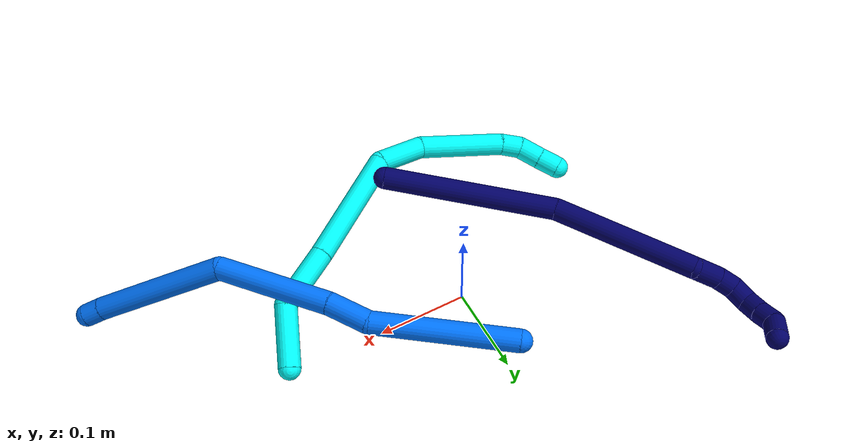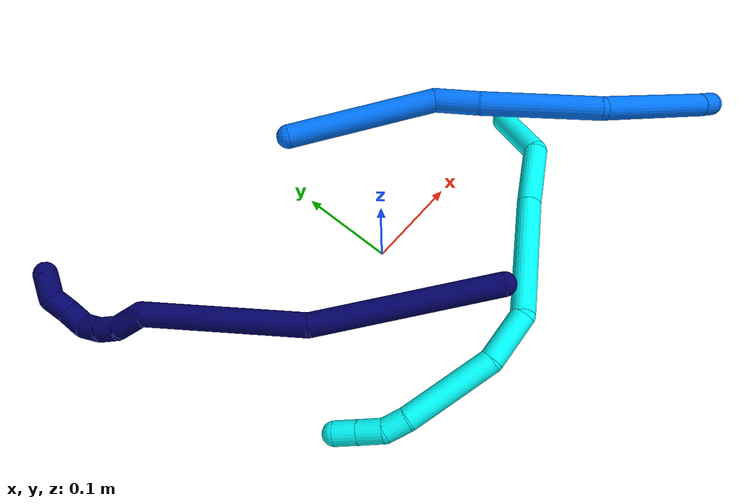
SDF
<sdf version="1.7">
 <world name="default">
  <model name="photoneo_s_sensor">
   <static>1</static>
   <pose>0 0 2 1.57079 1.57079 3.14159</pose>
   <link name="link">
    <inertial><mass>0.1</mass></inertial>
    <sensor name="sensor" type="depth">
     <update_rate>30</update_rate>
     <camera>
      <horizontal_fov>1.22</horizontal_fov>
      <image><width>1920</width><height>1200</height><format>B8G8R8</format></image>
      <clip><near>0.1</near><far>4</far></clip>
      <depth_camera><output>points</output></depth_camera>
     </camera>
     <plugin name="camera_plugin" filename="libgazebo_ros_depth_camera.so">
      <baseline>0.2</baseline>
      <alwaysOn>1</alwaysOn>
      <updateRate>0.0</updateRate>
      <cameraName>camera_ir</cameraName>
      <imageTopicName>/camera/color/image_raw</imageTopicName>
      <cameraInfoTopicName>/camera/color/camera_info</cameraInfoTopicName>
      <depthImageTopicName>/camera/depth/image_raw</depthImageTopicName>
      <depthImageCameraInfoTopicName>/camera/depth/camera_info</depthImageCameraInfoTopicName>
      <pointCloudTopicName>/camera/depth/points</pointCloudTopicName>
      <frameName>fr_optical</frameName>
      <pointCloudCutoff>0.1</pointCloudCutoff>
      <pointCloudCutoffMax>2.0</pointCloudCutoffMax>
      <distortionK1>0</distortionK1>
      <distortionK2>0</distortionK2>
      <distortionK3>0</distortionK3>
      <distortionT1>0</distortionT1>
      <distortionT2>0</distortionT2>
      <CxPrime>0</CxPrime>
      <Cx>0</Cx>
      <Cy>0</Cy>
      <focalLength>0</focalLength>
      <hackBaseline>0</hackBaseline>
     </plugin>
    </sensor>
   </link>
  </model>
  <model name="bin">
   <static>1</static>
   <link name="bottom">
    <collision name="collision-bottom">
     <pose>0 0 -0.01 0 -0 0</pose>
     <geometry><box><size>0.8 0.6 0.02</size></box></geometry>
     <surface>
      <friction><ode><mu>100</mu><mu2>100</mu2></ode></friction>
      <contact><collide_bitmask>65535</collide_bitmask></contact>
     </surface>
    </collision>
   </link>
   <link name="west_wall">
    <collision name="collision-west_wall">
     <pose>-0.41 0 0.1 0 -0 0</pose>
     <geometry><box><size>0.02 0.6 0.2</size></box></geometry>
     <surface>
      <friction><ode><mu>100</mu><mu2>100</mu2></ode></friction>
      <contact><collide_bitmask>65535</collide_bitmask></contact>
     </surface>
    </collision>
   </link>
   <link name="east_wall">
    <collision name="collision-east_wall">
     <pose>0.41 0 0.1 0 -0 0</pose>
     <geometry><box><size>0.02 0.6 0.2</size></box></geometry>
     <surface>
      <friction><ode><mu>100</mu><mu2>100</mu2></ode></friction>
      <contact><collide_bitmask>65535</collide_bitmask></contact>
     </surface>
    </collision>
   </link>
   <link name="south_wall">
    <collision name="collision-south_wall">
     <pose>0 -0.31 0.1 0 -0 0</pose>
     <geometry><box><size>0.8 0.02 0.2</size></box></geometry>
     <surface>
      <friction><ode><mu>100</mu><mu2>100</mu2></ode></friction>
      <contact><collide_bitmask>65535</collide_bitmask></contact>
     </surface>
    </collision>
   </link>
   <link name="north_wall">
    <collision name="collision-north_wall">
     <pose>0 0.31 0.1 0 -0 0</pose>
     <geometry><box><size>0.8 0.02 0.2</size></box></geometry>
     <surface>
      <friction><ode><mu>100</mu><mu2>100</mu2></ode></friction>
      <contact><collide_bitmask>65535</collide_bitmask></contact>
     </surface>
    </collision>
   </link>
  </model>
  <model name="3">
   <static>0</static>
   <link name="3">
    <collision name="collision-cylinder-e_1_1_4">
     <pose>-0.009029 0.030796 0.013346 -1.16187 -0.262787 0.173087</pose>
     <geometry><cylinder><radius>0.0125</radius><length>0.069514</length></cylinder></geometry>
     <surface>
      <friction><ode><mu>1.16</mu><mu2>1.16</mu2><slip1>0</slip1><slip2>0</slip2></ode></friction>
      <contact><ode><kp>1e+06</kp><kd>1</kd><max_vel>0</max_vel><min_depth>0.001</min_depth></ode></contact>
     </surface>
    </collision>
    <visual name="visual-cylinder-e_1_1_4">
     <pose>-0.009029 0.030796 0.013346 -1.16187 -0.262787 0.173087</pose>
     <geometry><cylinder><radius>0.0125</radius><length>0.069514</length></cylinder></geometry>
     <material><ambient>0.003922 1 0.996078 1</ambient></material>
    </visual>
    <collision name="collision-cylinder-e_2_4_5">
     <pose>-0.045353 0.07869 0.041464 -0.858208 -0.879317 0.423951</pose>
     <geometry><cylinder><radius>0.0125</radius><length>0.070867</length></cylinder></geometry>
     <surface>
      <friction><ode><mu>1.16</mu><mu2>1.16</mu2><slip1>0</slip1><slip2>0</slip2></ode></friction>
      <contact><ode><kp>1e+06</kp><kd>1</kd><max_vel>0</max_vel><min_depth>0.001</min_depth></ode></contact>
     </surface>
    </collision>
    <visual name="visual-cylinder-e_2_4_5">
     <pose>-0.045353 0.07869 0.041464 -0.858208 -0.879317 0.423951</pose>
     <geometry><cylinder><radius>0.0125</radius><length>0.070867</length></cylinder></geometry>
     <material><ambient>0.003922 1 0.996078 1</ambient></material>
    </visual>
    <collision name="collision-cylinder-e_3_5_6">
     <pose>-0.122105 0.130077 0.086009 -0.855806 -0.82803 0.39558</pose>
     <geometry><cylinder><radius>0.0125</radius><length>0.134286</length></cylinder></geometry>
     <surface>
      <friction><ode><mu>1.16</mu><mu2>1.16</mu2><slip1>0</slip1><slip2>0</slip2></ode></friction>
      <contact><ode><kp>1e+06</kp><kd>1</kd><max_vel>0</max_vel><min_depth>0.001</min_depth></ode></contact>
     </surface>
    </collision>
    <visual name="visual-cylinder-e_3_5_6">
     <pose>-0.122105 0.130077 0.086009 -0.855806 -0.82803 0.39558</pose>
     <geometry><cylinder><radius>0.0125</radius><length>0.134286</length></cylinder></geometry>
     <material><ambient>0.003922 1 0.996078 1</ambient></material>
    </visual>
    <collision name="collision-cylinder-e_4_6_7">
     <pose>-0.197229 0.164097 0.124496 0.030874 -1.2433 -0.022119</pose>
     <geometry><cylinder><radius>0.0125</radius><length>0.054215</length></cylinder></geometry>
     <surface>
      <friction><ode><mu>1.16</mu><mu2>1.16</mu2><slip1>0</slip1><slip2>0</slip2></ode></friction>
      <contact><ode><kp>1e+06</kp><kd>1</kd><max_vel>0</max_vel><min_depth>0.001</min_depth></ode></contact>
     </surface>
    </collision>
    <visual name="visual-cylinder-e_4_6_7">
     <pose>-0.197229 0.164097 0.124496 0.030874 -1.2433 -0.022119</pose>
     <geometry><cylinder><radius>0.0125</radius><length>0.054215</length></cylinder></geometry>
     <material><ambient>0.003922 1 0.996078 1</ambient></material>
    </visual>
    <collision name="collision-cylinder-e_5_7_8">
     <pose>-0.269309 0.150423 0.137398 1.26815 -1.27698 -0.999218</pose>
     <geometry><cylinder><radius>0.0125</radius><length>0.096981</length></cylinder></geometry>
     <surface>
      <friction><ode><mu>1.16</mu><mu2>1.16</mu2><slip1>0</slip1><slip2>0</slip2></ode></friction>
      <contact><ode><kp>1e+06</kp><kd>1</kd><max_vel>0</max_vel><min_depth>0.001</min_depth></ode></contact>
     </surface>
    </collision>
    <visual name="visual-cylinder-e_5_7_8">
     <pose>-0.269309 0.150423 0.137398 1.26815 -1.27698 -0.999218</pose>
     <geometry><cylinder><radius>0.0125</radius><length>0.096981</length></cylinder></geometry>
     <material><ambient>0.003922 1 0.996078 1</ambient></material>
    </visual>
    <collision name="collision-cylinder-e_6_8_9">
     <pose>-0.32642 0.131555 0.142108 1.4751 -1.09688 -1.01353</pose>
     <geometry><cylinder><radius>0.0125</radius><length>0.02405</length></cylinder></geometry>
     <surface>
      <friction><ode><mu>1.16</mu><mu2>1.16</mu2><slip1>0</slip1><slip2>0</slip2></ode></friction>
      <contact><ode><kp>1e+06</kp><kd>1</kd><max_vel>0</max_vel><min_depth>0.001</min_depth></ode></contact>
     </surface>
    </collision>
    <visual name="visual-cylinder-e_6_8_9">
     <pose>-0.32642 0.131555 0.142108 1.4751 -1.09688 -1.01353</pose>
     <geometry><cylinder><radius>0.0125</radius><length>0.02405</length></cylinder></geometry>
     <material><ambient>0.003922 1 0.996078 1</ambient></material>
    </visual>
    <collision name="collision-cylinder-e_7_9_10">
     <pose>-0.345964 0.116875 0.139719 1.87691 -0.741013 -0.974953</pose>
     <geometry><cylinder><radius>0.0125</radius><length>0.026205</length></cylinder></geometry>
     <surface>
      <friction><ode><mu>1.16</mu><mu2>1.16</mu2><slip1>0</slip1><slip2>0</slip2></ode></friction>
      <contact><ode><kp>1e+06</kp><kd>1</kd><max_vel>0</max_vel><min_depth>0.001</min_depth></ode></contact>
     </surface>
    </collision>
    <visual name="visual-cylinder-e_7_9_10">
     <pose>-0.345964 0.116875 0.139719 1.87691 -0.741013 -0.974953</pose>
     <geometry><cylinder><radius>0.0125</radius><length>0.026205</length></cylinder></geometry>
     <material><ambient>0.003922 1 0.996078 1</ambient></material>
    </visual>
    <collision name="collision-cylinder-e_8_10_2">
     <pose>-0.362999 0.099485 0.133854 1.91741 -0.755846 -1.02934</pose>
     <geometry><cylinder><radius>0.0125</radius><length>0.023882</length></cylinder></geometry>
     <surface>
      <friction><ode><mu>1.16</mu><mu2>1.16</mu2><slip1>0</slip1><slip2>0</slip2></ode></friction>
      <contact><ode><kp>1e+06</kp><kd>1</kd><max_vel>0</max_vel><min_depth>0.001</min_depth></ode></contact>
     </surface>
    </collision>
    <visual name="visual-cylinder-e_8_10_2">
     <pose>-0.362999 0.099485 0.133854 1.91741 -0.755846 -1.02934</pose>
     <geometry><cylinder><radius>0.0125</radius><length>0.023882</length></cylinder></geometry>
     <material><ambient>0.003922 1 0.996078 1</ambient></material>
    </visual>
    <collision name="collision-sphere-2">
     <pose>-0.37119 0.091313 0.130902 0 -0 0</pose>
     <geometry><sphere><radius>0.0125</radius></sphere></geometry>
     <surface>
      <friction><ode><mu>1.16</mu><mu2>1.16</mu2><slip1>0</slip1><slip2>0</slip2></ode></friction>
      <contact><ode><kp>1e+06</kp><kd>1</kd><max_vel>0</max_vel><min_depth>0.001</min_depth></ode></contact>
     </surface>
    </collision>
    <visual name="visual-sphere-2">
     <pose>-0.37119 0.091313 0.130902 0 -0 0</pose>
     <geometry><sphere><radius>0.0125</radius></sphere></geometry>
     <material><ambient>0.003922 1 0.996078 1</ambient></material>
    </visual>
    <collision name="collision-sphere-10">
     <pose>-0.354809 0.107658 0.136806 0 -0 0</pose>
     <geometry><sphere><radius>0.0125</radius></sphere></geometry>
     <surface>
      <friction><ode><mu>1.16</mu><mu2>1.16</mu2><slip1>0</slip1><slip2>0</slip2></ode></friction>
      <contact><ode><kp>1e+06</kp><kd>1</kd><max_vel>0</max_vel><min_depth>0.001</min_depth></ode></contact>
     </surface>
    </collision>
    <visual name="visual-sphere-10">
     <pose>-0.354809 0.107658 0.136806 0 -0 0</pose>
     <geometry><sphere><radius>0.0125</radius></sphere></geometry>
     <material><ambient>0.003922 1 0.996078 1</ambient></material>
    </visual>
    <collision name="collision-sphere-9">
     <pose>-0.33712 0.126093 0.142632 0 -0 0</pose>
     <geometry><sphere><radius>0.0125</radius></sphere></geometry>
     <surface>
      <friction><ode><mu>1.16</mu><mu2>1.16</mu2><slip1>0</slip1><slip2>0</slip2></ode></friction>
      <contact><ode><kp>1e+06</kp><kd>1</kd><max_vel>0</max_vel><min_depth>0.001</min_depth></ode></contact>
     </surface>
    </collision>
    <visual name="visual-sphere-9">
     <pose>-0.33712 0.126093 0.142632 0 -0 0</pose>
     <geometry><sphere><radius>0.0125</radius></sphere></geometry>
     <material><ambient>0.003922 1 0.996078 1</ambient></material>
    </visual>
    <collision name="collision-sphere-4">
     <pose>-0.018058 0.061593 0.026692 0 -0 0</pose>
     <geometry><sphere><radius>0.0125</radius></sphere></geometry>
     <surface>
      <friction><ode><mu>1.16</mu><mu2>1.16</mu2><slip1>0</slip1><slip2>0</slip2></ode></friction>
      <contact><ode><kp>1e+06</kp><kd>1</kd><max_vel>0</max_vel><min_depth>0.001</min_depth></ode></contact>
     </surface>
    </collision>
    <visual name="visual-sphere-4">
     <pose>-0.018058 0.061593 0.026692 0 -0 0</pose>
     <geometry><sphere><radius>0.0125</radius></sphere></geometry>
     <material><ambient>0.003922 1 0.996078 1</ambient></material>
    </visual>
    <collision name="collision-sphere-1">
     <geometry><sphere><radius>0.0125</radius></sphere></geometry>
     <surface>
      <friction><ode><mu>1.16</mu><mu2>1.16</mu2><slip1>0</slip1><slip2>0</slip2></ode></friction>
      <contact><ode><kp>1e+06</kp><kd>1</kd><max_vel>0</max_vel><min_depth>0.001</min_depth></ode></contact>
     </surface>
    </collision>
    <visual name="visual-sphere-1">
     <geometry><sphere><radius>0.0125</radius></sphere></geometry>
     <material><ambient>0.003922 1 0.996078 1</ambient></material>
    </visual>
    <collision name="collision-sphere-8">
     <pose>-0.315721 0.137018 0.141583 0 -0 0</pose>
     <geometry><sphere><radius>0.0125</radius></sphere></geometry>
     <surface>
      <friction><ode><mu>1.16</mu><mu2>1.16</mu2><slip1>0</slip1><slip2>0</slip2></ode></friction>
      <contact><ode><kp>1e+06</kp><kd>1</kd><max_vel>0</max_vel><min_depth>0.001</min_depth></ode></contact>
     </surface>
    </collision>
    <visual name="visual-sphere-8">
     <pose>-0.315721 0.137018 0.141583 0 -0 0</pose>
     <geometry><sphere><radius>0.0125</radius></sphere></geometry>
     <material><ambient>0.003922 1 0.996078 1</ambient></material>
    </visual>
    <collision name="collision-sphere-5">
     <pose>-0.072647 0.095787 0.056237 0 -0 0</pose>
     <geometry><sphere><radius>0.0125</radius></sphere></geometry>
     <surface>
      <friction><ode><mu>1.16</mu><mu2>1.16</mu2><slip1>0</slip1><slip2>0</slip2></ode></friction>
      <contact><ode><kp>1e+06</kp><kd>1</kd><max_vel>0</max_vel><min_depth>0.001</min_depth></ode></contact>
     </surface>
    </collision>
    <visual name="visual-sphere-5">
     <pose>-0.072647 0.095787 0.056237 0 -0 0</pose>
     <geometry><sphere><radius>0.0125</radius></sphere></geometry>
     <material><ambient>0.003922 1 0.996078 1</ambient></material>
    </visual>
    <collision name="collision-sphere-6">
     <pose>-0.171563 0.164367 0.115781 0 -0 0</pose>
     <geometry><sphere><radius>0.0125</radius></sphere></geometry>
     <surface>
      <friction><ode><mu>1.16</mu><mu2>1.16</mu2><slip1>0</slip1><slip2>0</slip2></ode></friction>
      <contact><ode><kp>1e+06</kp><kd>1</kd><max_vel>0</max_vel><min_depth>0.001</min_depth></ode></contact>
     </surface>
    </collision>
    <visual name="visual-sphere-6">
     <pose>-0.171563 0.164367 0.115781 0 -0 0</pose>
     <geometry><sphere><radius>0.0125</radius></sphere></geometry>
     <material><ambient>0.003922 1 0.996078 1</ambient></material>
    </visual>
    <collision name="collision-sphere-7">
     <pose>-0.222896 0.163828 0.133212 0 -0 0</pose>
     <geometry><sphere><radius>0.0125</radius></sphere></geometry>
     <surface>
      <friction><ode><mu>1.16</mu><mu2>1.16</mu2><slip1>0</slip1><slip2>0</slip2></ode></friction>
      <contact><ode><kp>1e+06</kp><kd>1</kd><max_vel>0</max_vel><min_depth>0.001</min_depth></ode></contact>
     </surface>
    </collision>
    <visual name="visual-sphere-7">
     <pose>-0.222896 0.163828 0.133212 0 -0 0</pose>
     <geometry><sphere><radius>0.0125</radius></sphere></geometry>
     <material><ambient>0.003922 1 0.996078 1</ambient></material>
    </visual>
    <inertial>
     <pose>-0.165269 0.114544 0.091532 0 -0 0</pose>
     <mass>0.5</mass>
     <inertia>
      <ixx>0.000212</ixx>
      <ixy>0</ixy>
      <ixz>0</ixz>
      <iyy>0.000354</iyy>
      <iyz>0</iyz>
      <izz>0.000169</izz>
     </inertia>
    </inertial>
   </link>
   <pose>0.210043 -0.000359 0.012509 2.33806 0.085631 -0.161557</pose>
  </model>
  <model name="7">
   <static>0</static>
   <link name="7">
    <collision name="collision-cylinder-e_1_1_4">
     <pose>-0.087224 0.029669 -0.029734 -2.35728 -1.122 1.97735</pose>
     <geometry><cylinder><radius>0.0125</radius><length>0.193622</length></cylinder></geometry>
     <surface>
      <friction><ode><mu>1.16</mu><mu2>1.16</mu2><slip1>0</slip1><slip2>0</slip2></ode></friction>
      <contact><ode><kp>1e+06</kp><kd>1</kd><max_vel>0</max_vel><min_depth>0.001</min_depth></ode></contact>
     </surface>
    </collision>
    <visual name="visual-cylinder-e_1_1_4">
     <pose>-0.087224 0.029669 -0.029734 -2.35728 -1.122 1.97735</pose>
     <geometry><cylinder><radius>0.0125</radius><length>0.193622</length></cylinder></geometry>
     <material><ambient>0.003922 0 0.403922 1</ambient></material>
    </visual>
    <collision name="collision-cylinder-e_2_4_5">
     <pose>-0.241674 0.07427 -0.105096 -2.82535 -0.950644 2.54072</pose>
     <geometry><cylinder><radius>0.0125</radius><length>0.165218</length></cylinder></geometry>
     <surface>
      <friction><ode><mu>1.16</mu><mu2>1.16</mu2><slip1>0</slip1><slip2>0</slip2></ode></friction>
      <contact><ode><kp>1e+06</kp><kd>1</kd><max_vel>0</max_vel><min_depth>0.001</min_depth></ode></contact>
     </surface>
    </collision>
    <visual name="visual-cylinder-e_2_4_5">
     <pose>-0.241674 0.07427 -0.105096 -2.82535 -0.950644 2.54072</pose>
     <geometry><cylinder><radius>0.0125</radius><length>0.165218</length></cylinder></geometry>
     <material><ambient>0.003922 0 0.403922 1</ambient></material>
    </visual>
    <collision name="collision-cylinder-e_3_5_6">
     <pose>-0.32432 0.08821 -0.151169 1.99261 -1.50046 -1.9275</pose>
     <geometry><cylinder><radius>0.0125</radius><length>0.030915</length></cylinder></geometry>
     <surface>
      <friction><ode><mu>1.16</mu><mu2>1.16</mu2><slip1>0</slip1><slip2>0</slip2></ode></friction>
      <contact><ode><kp>1e+06</kp><kd>1</kd><max_vel>0</max_vel><min_depth>0.001</min_depth></ode></contact>
     </surface>
    </collision>
    <visual name="visual-cylinder-e_3_5_6">
     <pose>-0.32432 0.08821 -0.151169 1.99261 -1.50046 -1.9275</pose>
     <geometry><cylinder><radius>0.0125</radius><length>0.030915</length></cylinder></geometry>
     <material><ambient>0.003922 0 0.403922 1</ambient></material>
    </visual>
    <collision name="collision-cylinder-e_4_6_7">
     <pose>-0.34896 0.086498 -0.155608 2.96306 -1.1561 -2.8689</pose>
     <geometry><cylinder><radius>0.0125</radius><length>0.020149</length></cylinder></geometry>
     <surface>
      <friction><ode><mu>1.16</mu><mu2>1.16</mu2><slip1>0</slip1><slip2>0</slip2></ode></friction>
      <contact><ode><kp>1e+06</kp><kd>1</kd><max_vel>0</max_vel><min_depth>0.001</min_depth></ode></contact>
     </surface>
    </collision>
    <visual name="visual-cylinder-e_4_6_7">
     <pose>-0.34896 0.086498 -0.155608 2.96306 -1.1561 -2.8689</pose>
     <geometry><cylinder><radius>0.0125</radius><length>0.020149</length></cylinder></geometry>
     <material><ambient>0.003922 0 0.403922 1</ambient></material>
    </visual>
    <collision name="collision-cylinder-e_5_7_8">
     <pose>-0.366329 0.083492 -0.166099 2.80342 -0.869136 -2.43671</pose>
     <geometry><cylinder><radius>0.0125</radius><length>0.021337</length></cylinder></geometry>
     <surface>
      <friction><ode><mu>1.16</mu><mu2>1.16</mu2><slip1>0</slip1><slip2>0</slip2></ode></friction>
      <contact><ode><kp>1e+06</kp><kd>1</kd><max_vel>0</max_vel><min_depth>0.001</min_depth></ode></contact>
     </surface>
    </collision>
    <visual name="visual-cylinder-e_5_7_8">
     <pose>-0.366329 0.083492 -0.166099 2.80342 -0.869136 -2.43671</pose>
     <geometry><cylinder><radius>0.0125</radius><length>0.021337</length></cylinder></geometry>
     <material><ambient>0.003922 0 0.403922 1</ambient></material>
    </visual>
    <collision name="collision-cylinder-e_6_8_9">
     <pose>-0.377882 0.082575 -0.182979 -3.01068 -0.314325 2.35716</pose>
     <geometry><cylinder><radius>0.0125</radius><length>0.022026</length></cylinder></geometry>
     <surface>
      <friction><ode><mu>1.16</mu><mu2>1.16</mu2><slip1>0</slip1><slip2>0</slip2></ode></friction>
      <contact><ode><kp>1e+06</kp><kd>1</kd><max_vel>0</max_vel><min_depth>0.001</min_depth></ode></contact>
     </surface>
    </collision>
    <visual name="visual-cylinder-e_6_8_9">
     <pose>-0.377882 0.082575 -0.182979 -3.01068 -0.314325 2.35716</pose>
     <geometry><cylinder><radius>0.0125</radius><length>0.022026</length></cylinder></geometry>
     <material><ambient>0.003922 0 0.403922 1</ambient></material>
    </visual>
    <collision name="collision-cylinder-e_7_9_10">
     <pose>-0.384924 0.085953 -0.202973 -2.93527 -0.354805 2.09427</pose>
     <geometry><cylinder><radius>0.0125</radius><length>0.020942</length></cylinder></geometry>
     <surface>
      <friction><ode><mu>1.16</mu><mu2>1.16</mu2><slip1>0</slip1><slip2>0</slip2></ode></friction>
      <contact><ode><kp>1e+06</kp><kd>1</kd><max_vel>0</max_vel><min_depth>0.001</min_depth></ode></contact>
     </surface>
    </collision>
    <visual name="visual-cylinder-e_7_9_10">
     <pose>-0.384924 0.085953 -0.202973 -2.93527 -0.354805 2.09427</pose>
     <geometry><cylinder><radius>0.0125</radius><length>0.020942</length></cylinder></geometry>
     <material><ambient>0.003922 0 0.403922 1</ambient></material>
    </visual>
    <collision name="collision-cylinder-e_8_10_2">
     <pose>-0.386106 0.086329 -0.225137 3.01204 0.191618 1.95415</pose>
     <geometry><cylinder><radius>0.0125</radius><length>0.025792</length></cylinder></geometry>
     <surface>
      <friction><ode><mu>1.16</mu><mu2>1.16</mu2><slip1>0</slip1><slip2>0</slip2></ode></friction>
      <contact><ode><kp>1e+06</kp><kd>1</kd><max_vel>0</max_vel><min_depth>0.001</min_depth></ode></contact>
     </surface>
    </collision>
    <visual name="visual-cylinder-e_8_10_2">
     <pose>-0.386106 0.086329 -0.225137 3.01204 0.191618 1.95415</pose>
     <geometry><cylinder><radius>0.0125</radius><length>0.025792</length></cylinder></geometry>
     <material><ambient>0.003922 0 0.403922 1</ambient></material>
    </visual>
    <collision name="collision-sphere-2">
     <pose>-0.38365 0.084694 -0.237691 0 -0 0</pose>
     <geometry><sphere><radius>0.0125</radius></sphere></geometry>
     <surface>
      <friction><ode><mu>1.16</mu><mu2>1.16</mu2><slip1>0</slip1><slip2>0</slip2></ode></friction>
      <contact><ode><kp>1e+06</kp><kd>1</kd><max_vel>0</max_vel><min_depth>0.001</min_depth></ode></contact>
     </surface>
    </collision>
    <visual name="visual-sphere-2">
     <pose>-0.38365 0.084694 -0.237691 0 -0 0</pose>
     <geometry><sphere><radius>0.0125</radius></sphere></geometry>
     <material><ambient>0.003922 0 0.403922 1</ambient></material>
    </visual>
    <collision name="collision-sphere-10">
     <pose>-0.388562 0.087965 -0.212583 0 -0 0</pose>
     <geometry><sphere><radius>0.0125</radius></sphere></geometry>
     <surface>
      <friction><ode><mu>1.16</mu><mu2>1.16</mu2><slip1>0</slip1><slip2>0</slip2></ode></friction>
      <contact><ode><kp>1e+06</kp><kd>1</kd><max_vel>0</max_vel><min_depth>0.001</min_depth></ode></contact>
     </surface>
    </collision>
    <visual name="visual-sphere-10">
     <pose>-0.388562 0.087965 -0.212583 0 -0 0</pose>
     <geometry><sphere><radius>0.0125</radius></sphere></geometry>
     <material><ambient>0.003922 0 0.403922 1</ambient></material>
    </visual>
    <collision name="collision-sphere-9">
     <pose>-0.381287 0.083942 -0.193363 0 -0 0</pose>
     <geometry><sphere><radius>0.0125</radius></sphere></geometry>
     <surface>
      <friction><ode><mu>1.16</mu><mu2>1.16</mu2><slip1>0</slip1><slip2>0</slip2></ode></friction>
      <contact><ode><kp>1e+06</kp><kd>1</kd><max_vel>0</max_vel><min_depth>0.001</min_depth></ode></contact>
     </surface>
    </collision>
    <visual name="visual-sphere-9">
     <pose>-0.381287 0.083942 -0.193363 0 -0 0</pose>
     <geometry><sphere><radius>0.0125</radius></sphere></geometry>
     <material><ambient>0.003922 0 0.403922 1</ambient></material>
    </visual>
    <collision name="collision-sphere-4">
     <pose>-0.174448 0.059339 -0.059468 0 -0 0</pose>
     <geometry><sphere><radius>0.0125</radius></sphere></geometry>
     <surface>
      <friction><ode><mu>1.16</mu><mu2>1.16</mu2><slip1>0</slip1><slip2>0</slip2></ode></friction>
      <contact><ode><kp>1e+06</kp><kd>1</kd><max_vel>0</max_vel><min_depth>0.001</min_depth></ode></contact>
     </surface>
    </collision>
    <visual name="visual-sphere-4">
     <pose>-0.174448 0.059339 -0.059468 0 -0 0</pose>
     <geometry><sphere><radius>0.0125</radius></sphere></geometry>
     <material><ambient>0.003922 0 0.403922 1</ambient></material>
    </visual>
    <collision name="collision-sphere-1">
     <geometry><sphere><radius>0.0125</radius></sphere></geometry>
     <surface>
      <friction><ode><mu>1.16</mu><mu2>1.16</mu2><slip1>0</slip1><slip2>0</slip2></ode></friction>
      <contact><ode><kp>1e+06</kp><kd>1</kd><max_vel>0</max_vel><min_depth>0.001</min_depth></ode></contact>
     </surface>
    </collision>
    <visual name="visual-sphere-1">
     <geometry><sphere><radius>0.0125</radius></sphere></geometry>
     <material><ambient>0.003922 0 0.403922 1</ambient></material>
    </visual>
    <collision name="collision-sphere-8">
     <pose>-0.374477 0.081208 -0.172595 0 -0 0</pose>
     <geometry><sphere><radius>0.0125</radius></sphere></geometry>
     <surface>
      <friction><ode><mu>1.16</mu><mu2>1.16</mu2><slip1>0</slip1><slip2>0</slip2></ode></friction>
      <contact><ode><kp>1e+06</kp><kd>1</kd><max_vel>0</max_vel><min_depth>0.001</min_depth></ode></contact>
     </surface>
    </collision>
    <visual name="visual-sphere-8">
     <pose>-0.374477 0.081208 -0.172595 0 -0 0</pose>
     <geometry><sphere><radius>0.0125</radius></sphere></geometry>
     <material><ambient>0.003922 0 0.403922 1</ambient></material>
    </visual>
    <collision name="collision-sphere-5">
     <pose>-0.308901 0.089201 -0.150724 0 -0 0</pose>
     <geometry><sphere><radius>0.0125</radius></sphere></geometry>
     <surface>
      <friction><ode><mu>1.16</mu><mu2>1.16</mu2><slip1>0</slip1><slip2>0</slip2></ode></friction>
      <contact><ode><kp>1e+06</kp><kd>1</kd><max_vel>0</max_vel><min_depth>0.001</min_depth></ode></contact>
     </surface>
    </collision>
    <visual name="visual-sphere-5">
     <pose>-0.308901 0.089201 -0.150724 0 -0 0</pose>
     <geometry><sphere><radius>0.0125</radius></sphere></geometry>
     <material><ambient>0.003922 0 0.403922 1</ambient></material>
    </visual>
    <collision name="collision-sphere-6">
     <pose>-0.339739 0.087219 -0.151614 0 -0 0</pose>
     <geometry><sphere><radius>0.0125</radius></sphere></geometry>
     <surface>
      <friction><ode><mu>1.16</mu><mu2>1.16</mu2><slip1>0</slip1><slip2>0</slip2></ode></friction>
      <contact><ode><kp>1e+06</kp><kd>1</kd><max_vel>0</max_vel><min_depth>0.001</min_depth></ode></contact>
     </surface>
    </collision>
    <visual name="visual-sphere-6">
     <pose>-0.339739 0.087219 -0.151614 0 -0 0</pose>
     <geometry><sphere><radius>0.0125</radius></sphere></geometry>
     <material><ambient>0.003922 0 0.403922 1</ambient></material>
    </visual>
    <collision name="collision-sphere-7">
     <pose>-0.35818 0.085777 -0.159603 0 -0 0</pose>
     <geometry><sphere><radius>0.0125</radius></sphere></geometry>
     <surface>
      <friction><ode><mu>1.16</mu><mu2>1.16</mu2><slip1>0</slip1><slip2>0</slip2></ode></friction>
      <contact><ode><kp>1e+06</kp><kd>1</kd><max_vel>0</max_vel><min_depth>0.001</min_depth></ode></contact>
     </surface>
    </collision>
    <visual name="visual-sphere-7">
     <pose>-0.35818 0.085777 -0.159603 0 -0 0</pose>
     <geometry><sphere><radius>0.0125</radius></sphere></geometry>
     <material><ambient>0.003922 0 0.403922 1</ambient></material>
    </visual>
    <inertial>
     <pose>-0.216067 0.060224 -0.097122 0 -0 0</pose>
     <mass>0.5</mass>
     <inertia>
      <ixx>5.1e-05</ixx>
      <ixy>0</ixy>
      <ixz>0</ixz>
      <iyy>0.001273</iyy>
      <iyz>0</iyz>
      <izz>0.000595</izz>
     </inertia>
    </inertial>
   </link>
   <pose>0.023098 -0.136896 0.076281 1.93736 -0.484905 -0.498135</pose>
  </model>
  <model name="14">
   <static>0</static>
   <link name="14">
    <collision name="collision-cylinder-e_1_1_4">
     <pose>0.014837 -0.075119 0.012264 1.40897 0.192524 0.163782</pose>
     <geometry><cylinder><radius>0.0125</radius><length>0.155092</length></cylinder></geometry>
     <surface>
      <friction><ode><mu>1.16</mu><mu2>1.16</mu2><slip1>0</slip1><slip2>0</slip2></ode></friction>
      <contact><ode><kp>1e+06</kp><kd>1</kd><max_vel>0</max_vel><min_depth>0.001</min_depth></ode></contact>
     </surface>
    </collision>
    <visual name="visual-cylinder-e_1_1_4">
     <pose>0.014837 -0.075119 0.012264 1.40897 0.192524 0.163782</pose>
     <geometry><cylinder><radius>0.0125</radius><length>0.155092</length></cylinder></geometry>
     <material><ambient>0 0.462745 1 1</ambient></material>
    </visual>
    <collision name="collision-cylinder-e_2_4_5">
     <pose>0.027599 -0.17308 0.022512 1.65879 -0.090292 -0.098595</pose>
     <geometry><cylinder><radius>0.0125</radius><length>0.04605</length></cylinder></geometry>
     <surface>
      <friction><ode><mu>1.16</mu><mu2>1.16</mu2><slip1>0</slip1><slip2>0</slip2></ode></friction>
      <contact><ode><kp>1e+06</kp><kd>1</kd><max_vel>0</max_vel><min_depth>0.001</min_depth></ode></contact>
     </surface>
    </collision>
    <visual name="visual-cylinder-e_2_4_5">
     <pose>0.027599 -0.17308 0.022512 1.65879 -0.090292 -0.098595</pose>
     <geometry><cylinder><radius>0.0125</radius><length>0.04605</length></cylinder></geometry>
     <material><ambient>0 0.462745 1 1</ambient></material>
    </visual>
    <collision name="collision-cylinder-e_3_5_6">
     <pose>0.028173 -0.258894 0.014706 1.6625 0.041882 0.045909</pose>
     <geometry><cylinder><radius>0.0125</radius><length>0.126586</length></cylinder></geometry>
     <surface>
      <friction><ode><mu>1.16</mu><mu2>1.16</mu2><slip1>0</slip1><slip2>0</slip2></ode></friction>
      <contact><ode><kp>1e+06</kp><kd>1</kd><max_vel>0</max_vel><min_depth>0.001</min_depth></ode></contact>
     </surface>
    </collision>
    <visual name="visual-cylinder-e_3_5_6">
     <pose>0.028173 -0.258894 0.014706 1.6625 0.041882 0.045909</pose>
     <geometry><cylinder><radius>0.0125</radius><length>0.126586</length></cylinder></geometry>
     <material><ambient>0 0.462745 1 1</ambient></material>
    </visual>
    <collision name="collision-cylinder-e_4_6_7">
     <pose>0.07512 -0.382099 -0.00313 1.76817 0.624785 0.750557</pose>
     <geometry><cylinder><radius>0.0125</radius><length>0.151464</length></cylinder></geometry>
     <surface>
      <friction><ode><mu>1.16</mu><mu2>1.16</mu2><slip1>0</slip1><slip2>0</slip2></ode></friction>
      <contact><ode><kp>1e+06</kp><kd>1</kd><max_vel>0</max_vel><min_depth>0.001</min_depth></ode></contact>
     </surface>
    </collision>
    <visual name="visual-cylinder-e_4_6_7">
     <pose>0.07512 -0.382099 -0.00313 1.76817 0.624785 0.750557</pose>
     <geometry><cylinder><radius>0.0125</radius><length>0.151464</length></cylinder></geometry>
     <material><ambient>0 0.462745 1 1</ambient></material>
    </visual>
    <collision name="collision-cylinder-e_5_7_2">
     <pose>0.126128 -0.450148 -0.016633 1.75517 0.700993 0.829139</pose>
     <geometry><cylinder><radius>0.0125</radius><length>0.020808</length></cylinder></geometry>
     <surface>
      <friction><ode><mu>1.16</mu><mu2>1.16</mu2><slip1>0</slip1><slip2>0</slip2></ode></friction>
      <contact><ode><kp>1e+06</kp><kd>1</kd><max_vel>0</max_vel><min_depth>0.001</min_depth></ode></contact>
     </surface>
    </collision>
    <visual name="visual-cylinder-e_5_7_2">
     <pose>0.126128 -0.450148 -0.016633 1.75517 0.700993 0.829139</pose>
     <geometry><cylinder><radius>0.0125</radius><length>0.020808</length></cylinder></geometry>
     <material><ambient>0 0.462745 1 1</ambient></material>
    </visual>
    <collision name="collision-sphere-2">
     <pose>0.132838 -0.457964 -0.01809 0 -0 0</pose>
     <geometry><sphere><radius>0.0125</radius></sphere></geometry>
     <surface>
      <friction><ode><mu>1.16</mu><mu2>1.16</mu2><slip1>0</slip1><slip2>0</slip2></ode></friction>
      <contact><ode><kp>1e+06</kp><kd>1</kd><max_vel>0</max_vel><min_depth>0.001</min_depth></ode></contact>
     </surface>
    </collision>
    <visual name="visual-sphere-2">
     <pose>0.132838 -0.457964 -0.01809 0 -0 0</pose>
     <geometry><sphere><radius>0.0125</radius></sphere></geometry>
     <material><ambient>0 0.462745 1 1</ambient></material>
    </visual>
    <collision name="collision-sphere-7">
     <pose>0.119417 -0.442332 -0.015175 0 -0 0</pose>
     <geometry><sphere><radius>0.0125</radius></sphere></geometry>
     <surface>
      <friction><ode><mu>1.16</mu><mu2>1.16</mu2><slip1>0</slip1><slip2>0</slip2></ode></friction>
      <contact><ode><kp>1e+06</kp><kd>1</kd><max_vel>0</max_vel><min_depth>0.001</min_depth></ode></contact>
     </surface>
    </collision>
    <visual name="visual-sphere-7">
     <pose>0.119417 -0.442332 -0.015175 0 -0 0</pose>
     <geometry><sphere><radius>0.0125</radius></sphere></geometry>
     <material><ambient>0 0.462745 1 1</ambient></material>
    </visual>
    <collision name="collision-sphere-6">
     <pose>0.030823 -0.321866 0.008915 0 -0 0</pose>
     <geometry><sphere><radius>0.0125</radius></sphere></geometry>
     <surface>
      <friction><ode><mu>1.16</mu><mu2>1.16</mu2><slip1>0</slip1><slip2>0</slip2></ode></friction>
      <contact><ode><kp>1e+06</kp><kd>1</kd><max_vel>0</max_vel><min_depth>0.001</min_depth></ode></contact>
     </surface>
    </collision>
    <visual name="visual-sphere-6">
     <pose>0.030823 -0.321866 0.008915 0 -0 0</pose>
     <geometry><sphere><radius>0.0125</radius></sphere></geometry>
     <material><ambient>0 0.462745 1 1</ambient></material>
    </visual>
    <collision name="collision-sphere-5">
     <pose>0.025523 -0.195923 0.020497 0 -0 0</pose>
     <geometry><sphere><radius>0.0125</radius></sphere></geometry>
     <surface>
      <friction><ode><mu>1.16</mu><mu2>1.16</mu2><slip1>0</slip1><slip2>0</slip2></ode></friction>
      <contact><ode><kp>1e+06</kp><kd>1</kd><max_vel>0</max_vel><min_depth>0.001</min_depth></ode></contact>
     </surface>
    </collision>
    <visual name="visual-sphere-5">
     <pose>0.025523 -0.195923 0.020497 0 -0 0</pose>
     <geometry><sphere><radius>0.0125</radius></sphere></geometry>
     <material><ambient>0 0.462745 1 1</ambient></material>
    </visual>
    <collision name="collision-sphere-1">
     <geometry><sphere><radius>0.0125</radius></sphere></geometry>
     <surface>
      <friction><ode><mu>1.16</mu><mu2>1.16</mu2><slip1>0</slip1><slip2>0</slip2></ode></friction>
      <contact><ode><kp>1e+06</kp><kd>1</kd><max_vel>0</max_vel><min_depth>0.001</min_depth></ode></contact>
     </surface>
    </collision>
    <visual name="visual-sphere-1">
     <geometry><sphere><radius>0.0125</radius></sphere></geometry>
     <material><ambient>0 0.462745 1 1</ambient></material>
    </visual>
    <collision name="collision-sphere-4">
     <pose>0.029675 -0.150238 0.024527 0 -0 0</pose>
     <geometry><sphere><radius>0.0125</radius></sphere></geometry>
     <surface>
      <friction><ode><mu>1.16</mu><mu2>1.16</mu2><slip1>0</slip1><slip2>0</slip2></ode></friction>
      <contact><ode><kp>1e+06</kp><kd>1</kd><max_vel>0</max_vel><min_depth>0.001</min_depth></ode></contact>
     </surface>
    </collision>
    <visual name="visual-sphere-4">
     <pose>0.029675 -0.150238 0.024527 0 -0 0</pose>
     <geometry><sphere><radius>0.0125</radius></sphere></geometry>
     <material><ambient>0 0.462745 1 1</ambient></material>
    </visual>
    <inertial>
     <pose>0.042282 -0.239268 0.00796 0 -0 0</pose>
     <mass>0.5</mass>
     <inertia>
      <ixx>0.000899</ixx>
      <ixy>0</ixy>
      <ixz>0</ixz>
      <iyy>0.000304</iyy>
      <iyz>0</iyz>
      <izz>0.000484</izz>
     </inertia>
    </inertial>
   </link>
   <pose>0.006525 0.129614 0.092125 -0.073581 0.714682 0.65807</pose>
  </model>
 </world>
</sdf>
